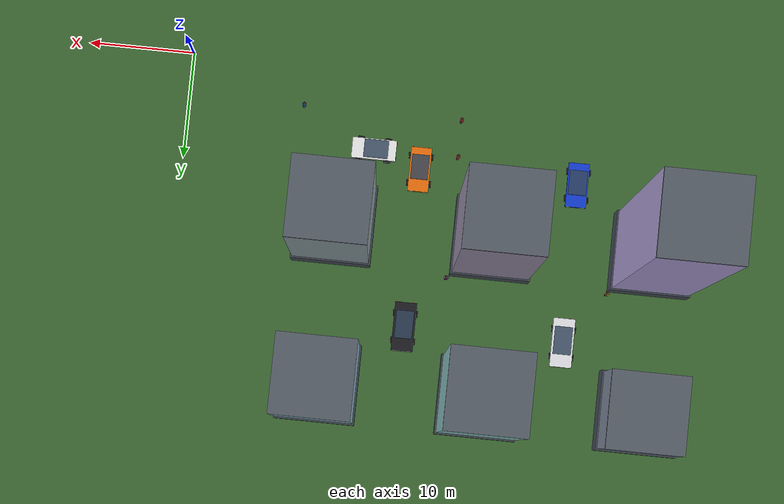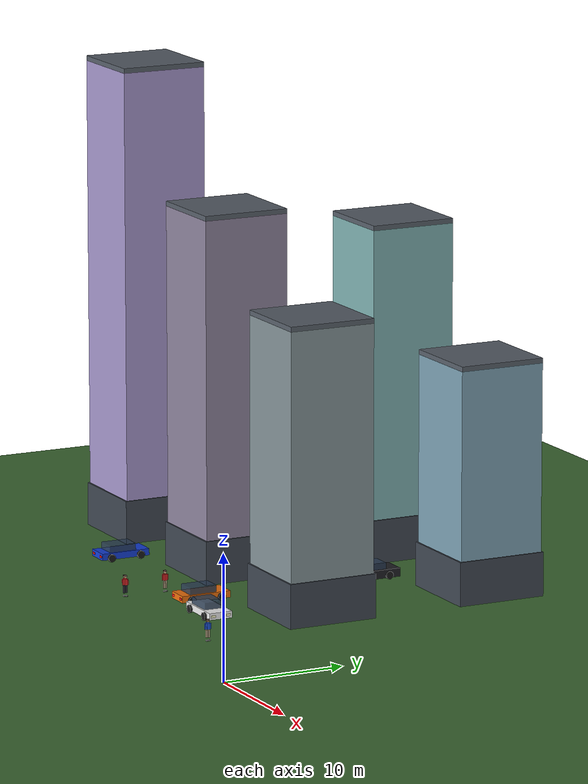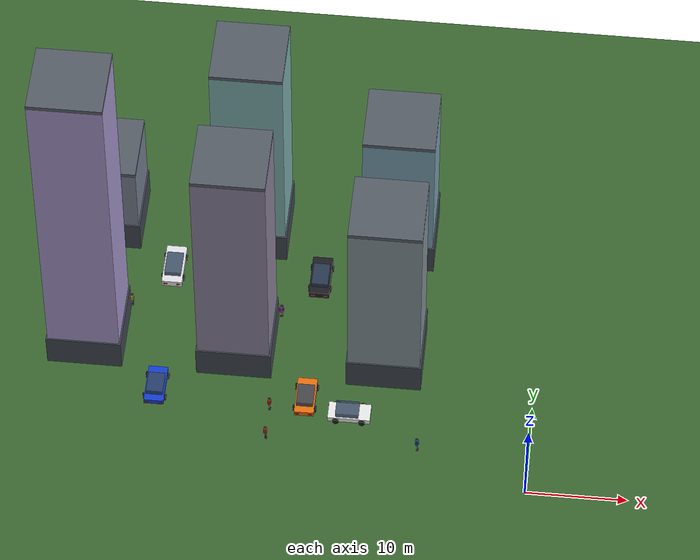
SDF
<sdf version="1.7">
 <world name="city_world">
  <model name="ground_plane">
   <static>true</static>
   <link name="link">
    <collision name="collision">
     <geometry><plane><normal>0 0 1</normal><size>300 300</size></plane></geometry>
     <surface><friction><ode><mu>100</mu><mu2>50</mu2></ode></friction></surface>
    </collision>
    <visual name="visual">
     <geometry><plane><normal>0 0 1</normal><size>300 300</size></plane></geometry>
     <material><ambient>0.24 0.42 0.20 1</ambient><diffuse>0.24 0.42 0.20 1</diffuse></material>
    </visual>
   </link>
  </model>
  <model name="car_2">
   <pose>-37.5 9.0 0.01 0 0 1.5708</pose>
   <static>true</static>
   <link name="link">
    <visual name="body">
     <pose>0 0 0.45 0 0 0</pose>
     <geometry><box><size>4.2 1.95 0.55</size></box></geometry>
     <material>
      <ambient>0.08 0.25 0.85 1</ambient>
      <diffuse>0.08 0.25 0.85 1</diffuse>
      <specular>0.5 0.5 0.5 1</specular>
     </material>
    </visual>
    <visual name="cabin">
     <pose>-0.2 0 0.95 0 0 0</pose>
     <geometry><box><size>2.3 1.65 0.65</size></box></geometry>
     <material>
      <ambient>0.22 0.30 0.40 0.85</ambient>
      <diffuse>0.22 0.30 0.40 0.85</diffuse>
      <specular>0.7 0.7 0.7 1</specular>
     </material>
    </visual>
    <visual name="hl_l">
     <pose>2.1 0.65 0.45 0 0 0</pose>
     <geometry><box><size>0.08 0.35 0.18</size></box></geometry>
     <material><ambient>1 1 0.8 1</ambient><diffuse>1 1 0.8 1</diffuse><emissive>1 1 0.8 1</emissive></material>
    </visual>
    <visual name="hl_r">
     <pose>2.1 -0.65 0.45 0 0 0</pose>
     <geometry><box><size>0.08 0.35 0.18</size></box></geometry>
     <material><ambient>1 1 0.8 1</ambient><diffuse>1 1 0.8 1</diffuse><emissive>1 1 0.8 1</emissive></material>
    </visual>
    <visual name="tl_l">
     <pose>-2.1 0.65 0.45 0 0 0</pose>
     <geometry><box><size>0.08 0.35 0.18</size></box></geometry>
     <material>
      <ambient>1 0.1 0.1 1</ambient>
      <diffuse>1 0.1 0.1 1</diffuse>
      <emissive>0.8 0 0 1</emissive>
     </material>
    </visual>
    <visual name="tl_r">
     <pose>-2.1 -0.65 0.45 0 0 0</pose>
     <geometry><box><size>0.08 0.35 0.18</size></box></geometry>
     <material>
      <ambient>1 0.1 0.1 1</ambient>
      <diffuse>1 0.1 0.1 1</diffuse>
      <emissive>0.8 0 0 1</emissive>
     </material>
    </visual>
    <visual name="w_fl">
     <pose>1.3 1.05 0.32 1.5708 0 0</pose>
     <geometry><cylinder><radius>0.32</radius><length>0.22</length></cylinder></geometry>
     <material><ambient>0.1 0.1 0.1 1</ambient><diffuse>0.1 0.1 0.1 1</diffuse></material>
    </visual>
    <visual name="w_fr">
     <pose>1.3 -1.05 0.32 1.5708 0 0</pose>
     <geometry><cylinder><radius>0.32</radius><length>0.22</length></cylinder></geometry>
     <material><ambient>0.1 0.1 0.1 1</ambient><diffuse>0.1 0.1 0.1 1</diffuse></material>
    </visual>
    <visual name="w_bl">
     <pose>-1.3 1.05 0.32 1.5708 0 0</pose>
     <geometry><cylinder><radius>0.32</radius><length>0.22</length></cylinder></geometry>
     <material><ambient>0.1 0.1 0.1 1</ambient><diffuse>0.1 0.1 0.1 1</diffuse></material>
    </visual>
    <visual name="w_br">
     <pose>-1.3 -1.05 0.32 1.5708 0 0</pose>
     <geometry><cylinder><radius>0.32</radius><length>0.22</length></cylinder></geometry>
     <material><ambient>0.1 0.1 0.1 1</ambient><diffuse>0.1 0.1 0.1 1</diffuse></material>
    </visual>
   </link>
  </model>
  <model name="car_3">
   <pose>-37.5 24.0 0.01 0 0 1.5708</pose>
   <static>true</static>
   <link name="link">
    <visual name="body">
     <pose>0 0 0.45 0 0 0</pose>
     <geometry><box><size>4.6 2.05 0.7</size></box></geometry>
     <material>
      <ambient>0.92 0.92 0.94 1</ambient>
      <diffuse>0.92 0.92 0.94 1</diffuse>
      <specular>0.5 0.5 0.5 1</specular>
     </material>
    </visual>
    <visual name="cabin">
     <pose>-0.2 0 0.95 0 0 0</pose>
     <geometry><box><size>2.6 1.65 0.75</size></box></geometry>
     <material>
      <ambient>0.22 0.30 0.40 0.85</ambient>
      <diffuse>0.22 0.30 0.40 0.85</diffuse>
      <specular>0.7 0.7 0.7 1</specular>
     </material>
    </visual>
    <visual name="hl_l">
     <pose>2.3 0.65 0.45 0 0 0</pose>
     <geometry><box><size>0.08 0.35 0.18</size></box></geometry>
     <material><ambient>1 1 0.8 1</ambient><diffuse>1 1 0.8 1</diffuse><emissive>1 1 0.8 1</emissive></material>
    </visual>
    <visual name="hl_r">
     <pose>2.3 -0.65 0.45 0 0 0</pose>
     <geometry><box><size>0.08 0.35 0.18</size></box></geometry>
     <material><ambient>1 1 0.8 1</ambient><diffuse>1 1 0.8 1</diffuse><emissive>1 1 0.8 1</emissive></material>
    </visual>
    <visual name="tl_l">
     <pose>-2.3 0.65 0.45 0 0 0</pose>
     <geometry><box><size>0.08 0.35 0.18</size></box></geometry>
     <material>
      <ambient>1 0.1 0.1 1</ambient>
      <diffuse>1 0.1 0.1 1</diffuse>
      <emissive>0.8 0 0 1</emissive>
     </material>
    </visual>
    <visual name="tl_r">
     <pose>-2.3 -0.65 0.45 0 0 0</pose>
     <geometry><box><size>0.08 0.35 0.18</size></box></geometry>
     <material>
      <ambient>1 0.1 0.1 1</ambient>
      <diffuse>1 0.1 0.1 1</diffuse>
      <emissive>0.8 0 0 1</emissive>
     </material>
    </visual>
    <visual name="w_fl">
     <pose>1.3 1.05 0.32 1.5708 0 0</pose>
     <geometry><cylinder><radius>0.32</radius><length>0.22</length></cylinder></geometry>
     <material><ambient>0.1 0.1 0.1 1</ambient><diffuse>0.1 0.1 0.1 1</diffuse></material>
    </visual>
    <visual name="w_fr">
     <pose>1.3 -1.05 0.32 1.5708 0 0</pose>
     <geometry><cylinder><radius>0.32</radius><length>0.22</length></cylinder></geometry>
     <material><ambient>0.1 0.1 0.1 1</ambient><diffuse>0.1 0.1 0.1 1</diffuse></material>
    </visual>
    <visual name="w_bl">
     <pose>-1.3 1.05 0.32 1.5708 0 0</pose>
     <geometry><cylinder><radius>0.32</radius><length>0.22</length></cylinder></geometry>
     <material><ambient>0.1 0.1 0.1 1</ambient><diffuse>0.1 0.1 0.1 1</diffuse></material>
    </visual>
    <visual name="w_br">
     <pose>-1.3 -1.05 0.32 1.5708 0 0</pose>
     <geometry><cylinder><radius>0.32</radius><length>0.22</length></cylinder></geometry>
     <material><ambient>0.1 0.1 0.1 1</ambient><diffuse>0.1 0.1 0.1 1</diffuse></material>
    </visual>
   </link>
  </model>
  <model name="car_5">
   <pose>-22.5 9.0 0.01 0 0 1.5708</pose>
   <static>true</static>
   <link name="link">
    <visual name="body">
     <pose>0 0 0.45 0 0 0</pose>
     <geometry><box><size>4.2 1.95 0.55</size></box></geometry>
     <material>
      <ambient>0.95 0.45 0.05 1</ambient>
      <diffuse>0.95 0.45 0.05 1</diffuse>
      <specular>0.5 0.5 0.5 1</specular>
     </material>
    </visual>
    <visual name="cabin">
     <pose>-0.2 0 0.95 0 0 0</pose>
     <geometry><box><size>2.3 1.65 0.65</size></box></geometry>
     <material>
      <ambient>0.22 0.30 0.40 0.85</ambient>
      <diffuse>0.22 0.30 0.40 0.85</diffuse>
      <specular>0.7 0.7 0.7 1</specular>
     </material>
    </visual>
    <visual name="hl_l">
     <pose>2.1 0.65 0.45 0 0 0</pose>
     <geometry><box><size>0.08 0.35 0.18</size></box></geometry>
     <material><ambient>1 1 0.8 1</ambient><diffuse>1 1 0.8 1</diffuse><emissive>1 1 0.8 1</emissive></material>
    </visual>
    <visual name="hl_r">
     <pose>2.1 -0.65 0.45 0 0 0</pose>
     <geometry><box><size>0.08 0.35 0.18</size></box></geometry>
     <material><ambient>1 1 0.8 1</ambient><diffuse>1 1 0.8 1</diffuse><emissive>1 1 0.8 1</emissive></material>
    </visual>
    <visual name="tl_l">
     <pose>-2.1 0.65 0.45 0 0 0</pose>
     <geometry><box><size>0.08 0.35 0.18</size></box></geometry>
     <material>
      <ambient>1 0.1 0.1 1</ambient>
      <diffuse>1 0.1 0.1 1</diffuse>
      <emissive>0.8 0 0 1</emissive>
     </material>
    </visual>
    <visual name="tl_r">
     <pose>-2.1 -0.65 0.45 0 0 0</pose>
     <geometry><box><size>0.08 0.35 0.18</size></box></geometry>
     <material>
      <ambient>1 0.1 0.1 1</ambient>
      <diffuse>1 0.1 0.1 1</diffuse>
      <emissive>0.8 0 0 1</emissive>
     </material>
    </visual>
    <visual name="w_fl">
     <pose>1.3 1.05 0.32 1.5708 0 0</pose>
     <geometry><cylinder><radius>0.32</radius><length>0.22</length></cylinder></geometry>
     <material><ambient>0.1 0.1 0.1 1</ambient><diffuse>0.1 0.1 0.1 1</diffuse></material>
    </visual>
    <visual name="w_fr">
     <pose>1.3 -1.05 0.32 1.5708 0 0</pose>
     <geometry><cylinder><radius>0.32</radius><length>0.22</length></cylinder></geometry>
     <material><ambient>0.1 0.1 0.1 1</ambient><diffuse>0.1 0.1 0.1 1</diffuse></material>
    </visual>
    <visual name="w_bl">
     <pose>-1.3 1.05 0.32 1.5708 0 0</pose>
     <geometry><cylinder><radius>0.32</radius><length>0.22</length></cylinder></geometry>
     <material><ambient>0.1 0.1 0.1 1</ambient><diffuse>0.1 0.1 0.1 1</diffuse></material>
    </visual>
    <visual name="w_br">
     <pose>-1.3 -1.05 0.32 1.5708 0 0</pose>
     <geometry><cylinder><radius>0.32</radius><length>0.22</length></cylinder></geometry>
     <material><ambient>0.1 0.1 0.1 1</ambient><diffuse>0.1 0.1 0.1 1</diffuse></material>
    </visual>
   </link>
  </model>
  <model name="car_6">
   <pose>-22.5 24.0 0.01 0 0 1.5708</pose>
   <static>true</static>
   <link name="link">
    <visual name="body">
     <pose>0 0 0.45 0 0 0</pose>
     <geometry><box><size>4.6 2.05 0.7</size></box></geometry>
     <material>
      <ambient>0.12 0.12 0.14 1</ambient>
      <diffuse>0.12 0.12 0.14 1</diffuse>
      <specular>0.5 0.5 0.5 1</specular>
     </material>
    </visual>
    <visual name="cabin">
     <pose>-0.2 0 0.95 0 0 0</pose>
     <geometry><box><size>2.6 1.65 0.75</size></box></geometry>
     <material>
      <ambient>0.22 0.30 0.40 0.85</ambient>
      <diffuse>0.22 0.30 0.40 0.85</diffuse>
      <specular>0.7 0.7 0.7 1</specular>
     </material>
    </visual>
    <visual name="hl_l">
     <pose>2.3 0.65 0.45 0 0 0</pose>
     <geometry><box><size>0.08 0.35 0.18</size></box></geometry>
     <material><ambient>1 1 0.8 1</ambient><diffuse>1 1 0.8 1</diffuse><emissive>1 1 0.8 1</emissive></material>
    </visual>
    <visual name="hl_r">
     <pose>2.3 -0.65 0.45 0 0 0</pose>
     <geometry><box><size>0.08 0.35 0.18</size></box></geometry>
     <material><ambient>1 1 0.8 1</ambient><diffuse>1 1 0.8 1</diffuse><emissive>1 1 0.8 1</emissive></material>
    </visual>
    <visual name="tl_l">
     <pose>-2.3 0.65 0.45 0 0 0</pose>
     <geometry><box><size>0.08 0.35 0.18</size></box></geometry>
     <material>
      <ambient>1 0.1 0.1 1</ambient>
      <diffuse>1 0.1 0.1 1</diffuse>
      <emissive>0.8 0 0 1</emissive>
     </material>
    </visual>
    <visual name="tl_r">
     <pose>-2.3 -0.65 0.45 0 0 0</pose>
     <geometry><box><size>0.08 0.35 0.18</size></box></geometry>
     <material>
      <ambient>1 0.1 0.1 1</ambient>
      <diffuse>1 0.1 0.1 1</diffuse>
      <emissive>0.8 0 0 1</emissive>
     </material>
    </visual>
    <visual name="w_fl">
     <pose>1.3 1.05 0.32 1.5708 0 0</pose>
     <geometry><cylinder><radius>0.32</radius><length>0.22</length></cylinder></geometry>
     <material><ambient>0.1 0.1 0.1 1</ambient><diffuse>0.1 0.1 0.1 1</diffuse></material>
    </visual>
    <visual name="w_fr">
     <pose>1.3 -1.05 0.32 1.5708 0 0</pose>
     <geometry><cylinder><radius>0.32</radius><length>0.22</length></cylinder></geometry>
     <material><ambient>0.1 0.1 0.1 1</ambient><diffuse>0.1 0.1 0.1 1</diffuse></material>
    </visual>
    <visual name="w_bl">
     <pose>-1.3 1.05 0.32 1.5708 0 0</pose>
     <geometry><cylinder><radius>0.32</radius><length>0.22</length></cylinder></geometry>
     <material><ambient>0.1 0.1 0.1 1</ambient><diffuse>0.1 0.1 0.1 1</diffuse></material>
    </visual>
    <visual name="w_br">
     <pose>-1.3 -1.05 0.32 1.5708 0 0</pose>
     <geometry><cylinder><radius>0.32</radius><length>0.22</length></cylinder></geometry>
     <material><ambient>0.1 0.1 0.1 1</ambient><diffuse>0.1 0.1 0.1 1</diffuse></material>
    </visual>
   </link>
  </model>
  <model name="car_16">
   <pose>-18.0 7.5 0.01 0 0 0.0000</pose>
   <static>true</static>
   <link name="link">
    <visual name="body">
     <pose>0 0 0.45 0 0 0</pose>
     <geometry><box><size>4.2 1.95 0.55</size></box></geometry>
     <material>
      <ambient>0.95 0.95 0.95 1</ambient>
      <diffuse>0.95 0.95 0.95 1</diffuse>
      <specular>0.5 0.5 0.5 1</specular>
     </material>
    </visual>
    <visual name="cabin">
     <pose>-0.2 0 0.95 0 0 0</pose>
     <geometry><box><size>2.3 1.65 0.65</size></box></geometry>
     <material>
      <ambient>0.22 0.30 0.40 0.85</ambient>
      <diffuse>0.22 0.30 0.40 0.85</diffuse>
      <specular>0.7 0.7 0.7 1</specular>
     </material>
    </visual>
    <visual name="hl_l">
     <pose>2.1 0.65 0.45 0 0 0</pose>
     <geometry><box><size>0.08 0.35 0.18</size></box></geometry>
     <material><ambient>1 1 0.8 1</ambient><diffuse>1 1 0.8 1</diffuse><emissive>1 1 0.8 1</emissive></material>
    </visual>
    <visual name="hl_r">
     <pose>2.1 -0.65 0.45 0 0 0</pose>
     <geometry><box><size>0.08 0.35 0.18</size></box></geometry>
     <material><ambient>1 1 0.8 1</ambient><diffuse>1 1 0.8 1</diffuse><emissive>1 1 0.8 1</emissive></material>
    </visual>
    <visual name="tl_l">
     <pose>-2.1 0.65 0.45 0 0 0</pose>
     <geometry><box><size>0.08 0.35 0.18</size></box></geometry>
     <material>
      <ambient>1 0.1 0.1 1</ambient>
      <diffuse>1 0.1 0.1 1</diffuse>
      <emissive>0.8 0 0 1</emissive>
     </material>
    </visual>
    <visual name="tl_r">
     <pose>-2.1 -0.65 0.45 0 0 0</pose>
     <geometry><box><size>0.08 0.35 0.18</size></box></geometry>
     <material>
      <ambient>1 0.1 0.1 1</ambient>
      <diffuse>1 0.1 0.1 1</diffuse>
      <emissive>0.8 0 0 1</emissive>
     </material>
    </visual>
    <visual name="w_fl">
     <pose>1.3 1.05 0.32 1.5708 0 0</pose>
     <geometry><cylinder><radius>0.32</radius><length>0.22</length></cylinder></geometry>
     <material><ambient>0.1 0.1 0.1 1</ambient><diffuse>0.1 0.1 0.1 1</diffuse></material>
    </visual>
    <visual name="w_fr">
     <pose>1.3 -1.05 0.32 1.5708 0 0</pose>
     <geometry><cylinder><radius>0.32</radius><length>0.22</length></cylinder></geometry>
     <material><ambient>0.1 0.1 0.1 1</ambient><diffuse>0.1 0.1 0.1 1</diffuse></material>
    </visual>
    <visual name="w_bl">
     <pose>-1.3 1.05 0.32 1.5708 0 0</pose>
     <geometry><cylinder><radius>0.32</radius><length>0.22</length></cylinder></geometry>
     <material><ambient>0.1 0.1 0.1 1</ambient><diffuse>0.1 0.1 0.1 1</diffuse></material>
    </visual>
    <visual name="w_br">
     <pose>-1.3 -1.05 0.32 1.5708 0 0</pose>
     <geometry><cylinder><radius>0.32</radius><length>0.22</length></cylinder></geometry>
     <material><ambient>0.1 0.1 0.1 1</ambient><diffuse>0.1 0.1 0.1 1</diffuse></material>
    </visual>
   </link>
  </model>
  <model name="pedestrian_8">
   <pose>-26.0 7.5 0.02 0 0 0.0000</pose>
   <static>true</static>
   <link name="link">
    <visual name="head">
     <pose>0 0 1.62 0 0 0</pose>
     <geometry><sphere><radius>0.13</radius></sphere></geometry>
     <material><ambient>0.88 0.72 0.55 1</ambient><diffuse>0.88 0.72 0.55 1</diffuse></material>
    </visual>
    <visual name="cap">
     <pose>0 -0.02 1.70 0 0 0</pose>
     <geometry><box><size>0.24 0.22 0.10</size></box></geometry>
     <material><ambient>0.2 0.15 0.1 1</ambient><diffuse>0.2 0.15 0.1 1</diffuse></material>
    </visual>
    <visual name="torso">
     <pose>0 0 1.20 0 0 0</pose>
     <geometry><box><size>0.34 0.24 0.52</size></box></geometry>
     <material><ambient>0.88 0.15 0.15 1</ambient><diffuse>0.88 0.15 0.15 1</diffuse></material>
    </visual>
    <visual name="arm_l">
     <pose>0 0.20 1.18 0 0 0</pose>
     <geometry><box><size>0.10 0.10 0.48</size></box></geometry>
     <material><ambient>0.88 0.15 0.15 1</ambient><diffuse>0.88 0.15 0.15 1</diffuse></material>
    </visual>
    <visual name="arm_r">
     <pose>0 -0.20 1.18 0 0 0</pose>
     <geometry><box><size>0.10 0.10 0.48</size></box></geometry>
     <material><ambient>0.88 0.15 0.15 1</ambient><diffuse>0.88 0.15 0.15 1</diffuse></material>
    </visual>
    <visual name="leg_l">
     <pose>0 0.09 0.60 0 0 0</pose>
     <geometry><box><size>0.13 0.13 0.62</size></box></geometry>
     <material><ambient>0.72 0.65 0.52 1</ambient><diffuse>0.72 0.65 0.52 1</diffuse></material>
    </visual>
    <visual name="leg_r">
     <pose>0 -0.09 0.60 0 0 0</pose>
     <geometry><box><size>0.13 0.13 0.62</size></box></geometry>
     <material><ambient>0.72 0.65 0.52 1</ambient><diffuse>0.72 0.65 0.52 1</diffuse></material>
    </visual>
    <visual name="shoe_l">
     <pose>0.04 0.09 0.05 0 0 0</pose>
     <geometry><box><size>0.22 0.13 0.08</size></box></geometry>
     <material><ambient>0.1 0.1 0.1 1</ambient><diffuse>0.1 0.1 0.1 1</diffuse></material>
    </visual>
    <visual name="shoe_r">
     <pose>0.04 -0.09 0.05 0 0 0</pose>
     <geometry><box><size>0.22 0.13 0.08</size></box></geometry>
     <material><ambient>0.1 0.1 0.1 1</ambient><diffuse>0.1 0.1 0.1 1</diffuse></material>
    </visual>
   </link>
  </model>
  <model name="pedestrian_16">
   <pose>-26.0 4.0 0.04 0 0 0.0000</pose>
   <static>true</static>
   <link name="link">
    <visual name="head">
     <pose>0 0 1.62 0 0 0</pose>
     <geometry><sphere><radius>0.13</radius></sphere></geometry>
     <material><ambient>0.88 0.72 0.55 1</ambient><diffuse>0.88 0.72 0.55 1</diffuse></material>
    </visual>
    <visual name="cap">
     <pose>0 -0.02 1.70 0 0 0</pose>
     <geometry><box><size>0.24 0.22 0.10</size></box></geometry>
     <material><ambient>0.2 0.15 0.1 1</ambient><diffuse>0.2 0.15 0.1 1</diffuse></material>
    </visual>
    <visual name="torso">
     <pose>0 0 1.20 0 0 0</pose>
     <geometry><box><size>0.34 0.24 0.52</size></box></geometry>
     <material><ambient>0.88 0.15 0.15 1</ambient><diffuse>0.88 0.15 0.15 1</diffuse></material>
    </visual>
    <visual name="arm_l">
     <pose>0 0.20 1.18 0 0 0</pose>
     <geometry><box><size>0.10 0.10 0.48</size></box></geometry>
     <material><ambient>0.88 0.15 0.15 1</ambient><diffuse>0.88 0.15 0.15 1</diffuse></material>
    </visual>
    <visual name="arm_r">
     <pose>0 -0.20 1.18 0 0 0</pose>
     <geometry><box><size>0.10 0.10 0.48</size></box></geometry>
     <material><ambient>0.88 0.15 0.15 1</ambient><diffuse>0.88 0.15 0.15 1</diffuse></material>
    </visual>
    <visual name="leg_l">
     <pose>0 0.09 0.60 0 0 0</pose>
     <geometry><box><size>0.13 0.13 0.62</size></box></geometry>
     <material><ambient>0.18 0.18 0.22 1</ambient><diffuse>0.18 0.18 0.22 1</diffuse></material>
    </visual>
    <visual name="leg_r">
     <pose>0 -0.09 0.60 0 0 0</pose>
     <geometry><box><size>0.13 0.13 0.62</size></box></geometry>
     <material><ambient>0.18 0.18 0.22 1</ambient><diffuse>0.18 0.18 0.22 1</diffuse></material>
    </visual>
    <visual name="shoe_l">
     <pose>0.04 0.09 0.05 0 0 0</pose>
     <geometry><box><size>0.22 0.13 0.08</size></box></geometry>
     <material><ambient>0.1 0.1 0.1 1</ambient><diffuse>0.1 0.1 0.1 1</diffuse></material>
    </visual>
    <visual name="shoe_r">
     <pose>0.04 -0.09 0.05 0 0 0</pose>
     <geometry><box><size>0.22 0.13 0.08</size></box></geometry>
     <material><ambient>0.1 0.1 0.1 1</ambient><diffuse>0.1 0.1 0.1 1</diffuse></material>
    </visual>
   </link>
  </model>
  <model name="pedestrian_17">
   <pose>-11.0 4.0 0.04 0 0 0.0000</pose>
   <static>true</static>
   <link name="link">
    <visual name="head">
     <pose>0 0 1.62 0 0 0</pose>
     <geometry><sphere><radius>0.13</radius></sphere></geometry>
     <material><ambient>0.65 0.48 0.28 1</ambient><diffuse>0.65 0.48 0.28 1</diffuse></material>
    </visual>
    <visual name="cap">
     <pose>0 -0.02 1.70 0 0 0</pose>
     <geometry><box><size>0.24 0.22 0.10</size></box></geometry>
     <material><ambient>0.2 0.15 0.1 1</ambient><diffuse>0.2 0.15 0.1 1</diffuse></material>
    </visual>
    <visual name="torso">
     <pose>0 0 1.20 0 0 0</pose>
     <geometry><box><size>0.34 0.24 0.52</size></box></geometry>
     <material><ambient>0.12 0.35 0.88 1</ambient><diffuse>0.12 0.35 0.88 1</diffuse></material>
    </visual>
    <visual name="arm_l">
     <pose>0 0.20 1.18 0 0 0</pose>
     <geometry><box><size>0.10 0.10 0.48</size></box></geometry>
     <material><ambient>0.12 0.35 0.88 1</ambient><diffuse>0.12 0.35 0.88 1</diffuse></material>
    </visual>
    <visual name="arm_r">
     <pose>0 -0.20 1.18 0 0 0</pose>
     <geometry><box><size>0.10 0.10 0.48</size></box></geometry>
     <material><ambient>0.12 0.35 0.88 1</ambient><diffuse>0.12 0.35 0.88 1</diffuse></material>
    </visual>
    <visual name="leg_l">
     <pose>0 0.09 0.60 0 0 0</pose>
     <geometry><box><size>0.13 0.13 0.62</size></box></geometry>
     <material><ambient>0.72 0.65 0.52 1</ambient><diffuse>0.72 0.65 0.52 1</diffuse></material>
    </visual>
    <visual name="leg_r">
     <pose>0 -0.09 0.60 0 0 0</pose>
     <geometry><box><size>0.13 0.13 0.62</size></box></geometry>
     <material><ambient>0.72 0.65 0.52 1</ambient><diffuse>0.72 0.65 0.52 1</diffuse></material>
    </visual>
    <visual name="shoe_l">
     <pose>0.04 0.09 0.05 0 0 0</pose>
     <geometry><box><size>0.22 0.13 0.08</size></box></geometry>
     <material><ambient>0.1 0.1 0.1 1</ambient><diffuse>0.1 0.1 0.1 1</diffuse></material>
    </visual>
    <visual name="shoe_r">
     <pose>0.04 -0.09 0.05 0 0 0</pose>
     <geometry><box><size>0.22 0.13 0.08</size></box></geometry>
     <material><ambient>0.1 0.1 0.1 1</ambient><diffuse>0.1 0.1 0.1 1</diffuse></material>
    </visual>
   </link>
  </model>
  <model name="pedestrian_19">
   <pose>-41.2 19.0 0.04 0 0 1.5708</pose>
   <static>true</static>
   <link name="link">
    <visual name="head">
     <pose>0 0 1.62 0 0 0</pose>
     <geometry><sphere><radius>0.13</radius></sphere></geometry>
     <material><ambient>0.50 0.32 0.16 1</ambient><diffuse>0.50 0.32 0.16 1</diffuse></material>
    </visual>
    <visual name="cap">
     <pose>0 -0.02 1.70 0 0 0</pose>
     <geometry><box><size>0.24 0.22 0.10</size></box></geometry>
     <material><ambient>0.2 0.15 0.1 1</ambient><diffuse>0.2 0.15 0.1 1</diffuse></material>
    </visual>
    <visual name="torso">
     <pose>0 0 1.20 0 0 0</pose>
     <geometry><box><size>0.34 0.24 0.52</size></box></geometry>
     <material><ambient>0.92 0.72 0.10 1</ambient><diffuse>0.92 0.72 0.10 1</diffuse></material>
    </visual>
    <visual name="arm_l">
     <pose>0 0.20 1.18 0 0 0</pose>
     <geometry><box><size>0.10 0.10 0.48</size></box></geometry>
     <material><ambient>0.92 0.72 0.10 1</ambient><diffuse>0.92 0.72 0.10 1</diffuse></material>
    </visual>
    <visual name="arm_r">
     <pose>0 -0.20 1.18 0 0 0</pose>
     <geometry><box><size>0.10 0.10 0.48</size></box></geometry>
     <material><ambient>0.92 0.72 0.10 1</ambient><diffuse>0.92 0.72 0.10 1</diffuse></material>
    </visual>
    <visual name="leg_l">
     <pose>0 0.09 0.60 0 0 0</pose>
     <geometry><box><size>0.13 0.13 0.62</size></box></geometry>
     <material><ambient>0.18 0.18 0.22 1</ambient><diffuse>0.18 0.18 0.22 1</diffuse></material>
    </visual>
    <visual name="leg_r">
     <pose>0 -0.09 0.60 0 0 0</pose>
     <geometry><box><size>0.13 0.13 0.62</size></box></geometry>
     <material><ambient>0.18 0.18 0.22 1</ambient><diffuse>0.18 0.18 0.22 1</diffuse></material>
    </visual>
    <visual name="shoe_l">
     <pose>0.04 0.09 0.05 0 0 0</pose>
     <geometry><box><size>0.22 0.13 0.08</size></box></geometry>
     <material><ambient>0.1 0.1 0.1 1</ambient><diffuse>0.1 0.1 0.1 1</diffuse></material>
    </visual>
    <visual name="shoe_r">
     <pose>0.04 -0.09 0.05 0 0 0</pose>
     <geometry><box><size>0.22 0.13 0.08</size></box></geometry>
     <material><ambient>0.1 0.1 0.1 1</ambient><diffuse>0.1 0.1 0.1 1</diffuse></material>
    </visual>
   </link>
  </model>
  <model name="pedestrian_20">
   <pose>-26.0 19.0 0.04 0 0 1.5708</pose>
   <static>true</static>
   <link name="link">
    <visual name="head">
     <pose>0 0 1.62 0 0 0</pose>
     <geometry><sphere><radius>0.13</radius></sphere></geometry>
     <material><ambient>0.88 0.72 0.55 1</ambient><diffuse>0.88 0.72 0.55 1</diffuse></material>
    </visual>
    <visual name="cap">
     <pose>0 -0.02 1.70 0 0 0</pose>
     <geometry><box><size>0.24 0.22 0.10</size></box></geometry>
     <material><ambient>0.2 0.15 0.1 1</ambient><diffuse>0.2 0.15 0.1 1</diffuse></material>
    </visual>
    <visual name="torso">
     <pose>0 0 1.20 0 0 0</pose>
     <geometry><box><size>0.34 0.24 0.52</size></box></geometry>
     <material><ambient>0.60 0.15 0.72 1</ambient><diffuse>0.60 0.15 0.72 1</diffuse></material>
    </visual>
    <visual name="arm_l">
     <pose>0 0.20 1.18 0 0 0</pose>
     <geometry><box><size>0.10 0.10 0.48</size></box></geometry>
     <material><ambient>0.60 0.15 0.72 1</ambient><diffuse>0.60 0.15 0.72 1</diffuse></material>
    </visual>
    <visual name="arm_r">
     <pose>0 -0.20 1.18 0 0 0</pose>
     <geometry><box><size>0.10 0.10 0.48</size></box></geometry>
     <material><ambient>0.60 0.15 0.72 1</ambient><diffuse>0.60 0.15 0.72 1</diffuse></material>
    </visual>
    <visual name="leg_l">
     <pose>0 0.09 0.60 0 0 0</pose>
     <geometry><box><size>0.13 0.13 0.62</size></box></geometry>
     <material><ambient>0.72 0.65 0.52 1</ambient><diffuse>0.72 0.65 0.52 1</diffuse></material>
    </visual>
    <visual name="leg_r">
     <pose>0 -0.09 0.60 0 0 0</pose>
     <geometry><box><size>0.13 0.13 0.62</size></box></geometry>
     <material><ambient>0.72 0.65 0.52 1</ambient><diffuse>0.72 0.65 0.52 1</diffuse></material>
    </visual>
    <visual name="shoe_l">
     <pose>0.04 0.09 0.05 0 0 0</pose>
     <geometry><box><size>0.22 0.13 0.08</size></box></geometry>
     <material><ambient>0.1 0.1 0.1 1</ambient><diffuse>0.1 0.1 0.1 1</diffuse></material>
    </visual>
    <visual name="shoe_r">
     <pose>0.04 -0.09 0.05 0 0 0</pose>
     <geometry><box><size>0.22 0.13 0.08</size></box></geometry>
     <material><ambient>0.1 0.1 0.1 1</ambient><diffuse>0.1 0.1 0.1 1</diffuse></material>
    </visual>
   </link>
  </model>
  <model name="building_4">
   <pose>-45.0 15.0 19.59673645969056 0 0 0</pose>
   <static>true</static>
   <link name="link">
    <collision name="collision"><geometry><box><size>7.20 7.20 39.19</size></box></geometry></collision>
    <visual name="tower">
     <geometry><box><size>7.20 7.20 39.19</size></box></geometry>
     <material>
      <ambient>0.66 0.60 0.81 1</ambient>
      <diffuse>0.66 0.60 0.81 1</diffuse>
      <specular>0.3 0.3 0.3 1</specular>
     </material>
    </visual>
    <visual name="lobby">
     <pose>0 0 -17.80 0 0 0</pose>
     <geometry><box><size>7.50 7.50 3.6</size></box></geometry>
     <material><ambient>0.25 0.28 0.32 1</ambient><diffuse>0.25 0.28 0.32 1</diffuse></material>
    </visual>
    <visual name="parapet">
     <pose>0 0 19.80 0 0 0</pose>
     <geometry><box><size>7.20 7.20 0.4</size></box></geometry>
     <material><ambient>0.35 0.38 0.42 1</ambient><diffuse>0.35 0.38 0.42 1</diffuse></material>
    </visual>
   </link>
  </model>
  <model name="building_5">
   <pose>-45.0 30.0 5.687365754834933 0 0 0</pose>
   <static>true</static>
   <link name="link">
    <collision name="collision"><geometry><box><size>7.20 7.20 11.37</size></box></geometry></collision>
    <visual name="tower">
     <geometry><box><size>7.20 7.20 11.37</size></box></geometry>
     <material>
      <ambient>0.47 0.51 0.58 1</ambient>
      <diffuse>0.47 0.51 0.58 1</diffuse>
      <specular>0.3 0.3 0.3 1</specular>
     </material>
    </visual>
    <visual name="lobby">
     <pose>0 0 -3.89 0 0 0</pose>
     <geometry><box><size>7.50 7.50 3.6</size></box></geometry>
     <material><ambient>0.25 0.28 0.32 1</ambient><diffuse>0.25 0.28 0.32 1</diffuse></material>
    </visual>
    <visual name="parapet">
     <pose>0 0 5.89 0 0 0</pose>
     <geometry><box><size>7.20 7.20 0.4</size></box></geometry>
     <material><ambient>0.35 0.38 0.42 1</ambient><diffuse>0.35 0.38 0.42 1</diffuse></material>
    </visual>
   </link>
  </model>
  <model name="building_9">
   <pose>-30.0 15.0 14.8315799794232 0 0 0</pose>
   <static>true</static>
   <link name="link">
    <collision name="collision"><geometry><box><size>7.20 7.20 29.66</size></box></geometry></collision>
    <visual name="tower">
     <geometry><box><size>7.20 7.20 29.66</size></box></geometry>
     <material>
      <ambient>0.56 0.52 0.62 1</ambient>
      <diffuse>0.56 0.52 0.62 1</diffuse>
      <specular>0.3 0.3 0.3 1</specular>
     </material>
    </visual>
    <visual name="lobby">
     <pose>0 0 -13.03 0 0 0</pose>
     <geometry><box><size>7.50 7.50 3.6</size></box></geometry>
     <material><ambient>0.25 0.28 0.32 1</ambient><diffuse>0.25 0.28 0.32 1</diffuse></material>
    </visual>
    <visual name="parapet">
     <pose>0 0 15.03 0 0 0</pose>
     <geometry><box><size>7.20 7.20 0.4</size></box></geometry>
     <material><ambient>0.35 0.38 0.42 1</ambient><diffuse>0.35 0.38 0.42 1</diffuse></material>
    </visual>
   </link>
  </model>
  <model name="building_10">
   <pose>-30.0 30.0 13.768789853353107 0 0 0</pose>
   <static>true</static>
   <link name="link">
    <collision name="collision"><geometry><box><size>7.20 7.20 27.54</size></box></geometry></collision>
    <visual name="tower">
     <geometry><box><size>7.20 7.20 27.54</size></box></geometry>
     <material>
      <ambient>0.50 0.70 0.70 1</ambient>
      <diffuse>0.50 0.70 0.70 1</diffuse>
      <specular>0.3 0.3 0.3 1</specular>
     </material>
    </visual>
    <visual name="lobby">
     <pose>0 0 -11.97 0 0 0</pose>
     <geometry><box><size>7.50 7.50 3.6</size></box></geometry>
     <material><ambient>0.25 0.28 0.32 1</ambient><diffuse>0.25 0.28 0.32 1</diffuse></material>
    </visual>
    <visual name="parapet">
     <pose>0 0 13.97 0 0 0</pose>
     <geometry><box><size>7.20 7.20 0.4</size></box></geometry>
     <material><ambient>0.35 0.38 0.42 1</ambient><diffuse>0.35 0.38 0.42 1</diffuse></material>
    </visual>
   </link>
  </model>
  <model name="building_13">
   <pose>-15.0 15.0 11.805855594938096 0 0 0</pose>
   <static>true</static>
   <link name="link">
    <collision name="collision"><geometry><box><size>7.20 7.20 23.61</size></box></geometry></collision>
    <visual name="tower">
     <geometry><box><size>7.20 7.20 23.61</size></box></geometry>
     <material>
      <ambient>0.52 0.58 0.60 1</ambient>
      <diffuse>0.52 0.58 0.60 1</diffuse>
      <specular>0.3 0.3 0.3 1</specular>
     </material>
    </visual>
    <visual name="lobby">
     <pose>0 0 -10.01 0 0 0</pose>
     <geometry><box><size>7.50 7.50 3.6</size></box></geometry>
     <material><ambient>0.25 0.28 0.32 1</ambient><diffuse>0.25 0.28 0.32 1</diffuse></material>
    </visual>
    <visual name="parapet">
     <pose>0 0 12.01 0 0 0</pose>
     <geometry><box><size>7.20 7.20 0.4</size></box></geometry>
     <material><ambient>0.35 0.38 0.42 1</ambient><diffuse>0.35 0.38 0.42 1</diffuse></material>
    </visual>
   </link>
  </model>
  <model name="building_14">
   <pose>-15.0 30.0 9.476671871729494 0 0 0</pose>
   <static>true</static>
   <link name="link">
    <collision name="collision"><geometry><box><size>7.20 7.20 18.95</size></box></geometry></collision>
    <visual name="tower">
     <geometry><box><size>7.20 7.20 18.95</size></box></geometry>
     <material>
      <ambient>0.49 0.64 0.71 1</ambient>
      <diffuse>0.49 0.64 0.71 1</diffuse>
      <specular>0.3 0.3 0.3 1</specular>
     </material>
    </visual>
    <visual name="lobby">
     <pose>0 0 -7.68 0 0 0</pose>
     <geometry><box><size>7.50 7.50 3.6</size></box></geometry>
     <material><ambient>0.25 0.28 0.32 1</ambient><diffuse>0.25 0.28 0.32 1</diffuse></material>
    </visual>
    <visual name="parapet">
     <pose>0 0 9.68 0 0 0</pose>
     <geometry><box><size>7.20 7.20 0.4</size></box></geometry>
     <material><ambient>0.35 0.38 0.42 1</ambient><diffuse>0.35 0.38 0.42 1</diffuse></material>
    </visual>
   </link>
  </model>
  <model name="helipad_2">
   <pose>-30.0 30.0 27.6376 0 0 0</pose>
   <static>true</static>
   <link name="link">
    <visual name="pad">
     <geometry><cylinder><radius>2.5</radius><length>0.15</length></cylinder></geometry>
     <material><ambient>1.0 0.82 0.0 1</ambient><diffuse>1.0 0.82 0.0 1</diffuse></material>
    </visual>
    <visual name="ring">
     <pose>0 0 0.02 0 0 0</pose>
     <geometry><cylinder><radius>2.3</radius><length>0.12</length></cylinder></geometry>
     <material><ambient>0.2 0.2 0.2 1</ambient><diffuse>0.2 0.2 0.2 1</diffuse></material>
    </visual>
    <visual name="inner_pad">
     <pose>0 0 0.04 0 0 0</pose>
     <geometry><cylinder><radius>2.0</radius><length>0.10</length></cylinder></geometry>
     <material><ambient>1.0 0.82 0.0 1</ambient><diffuse>1.0 0.82 0.0 1</diffuse></material>
    </visual>
    <visual name="h_bar1">
     <pose>-0.75 0 0.10 0 0 0</pose>
     <geometry><box><size>0.35 1.8 0.02</size></box></geometry>
     <material><ambient>1 1 1 1</ambient><diffuse>1 1 1 1</diffuse></material>
    </visual>
    <visual name="h_bar2">
     <pose>0.75 0 0.10 0 0 0</pose>
     <geometry><box><size>0.35 1.8 0.02</size></box></geometry>
     <material><ambient>1 1 1 1</ambient><diffuse>1 1 1 1</diffuse></material>
    </visual>
    <visual name="h_cross">
     <pose>0 0 0.10 0 0 0</pose>
     <geometry><box><size>1.5 0.35 0.02</size></box></geometry>
     <material><ambient>1 1 1 1</ambient><diffuse>1 1 1 1</diffuse></material>
    </visual>
   </link>
  </model>
 </world>
</sdf>
